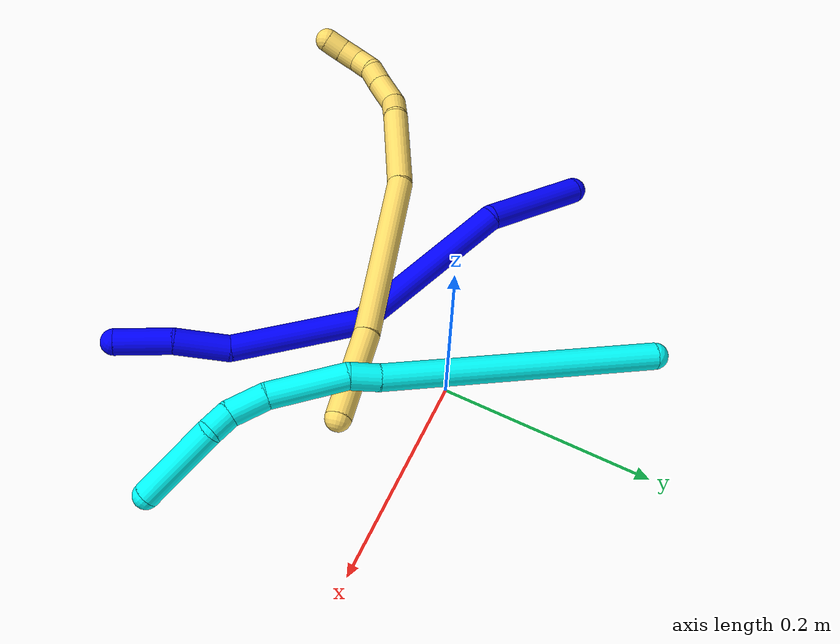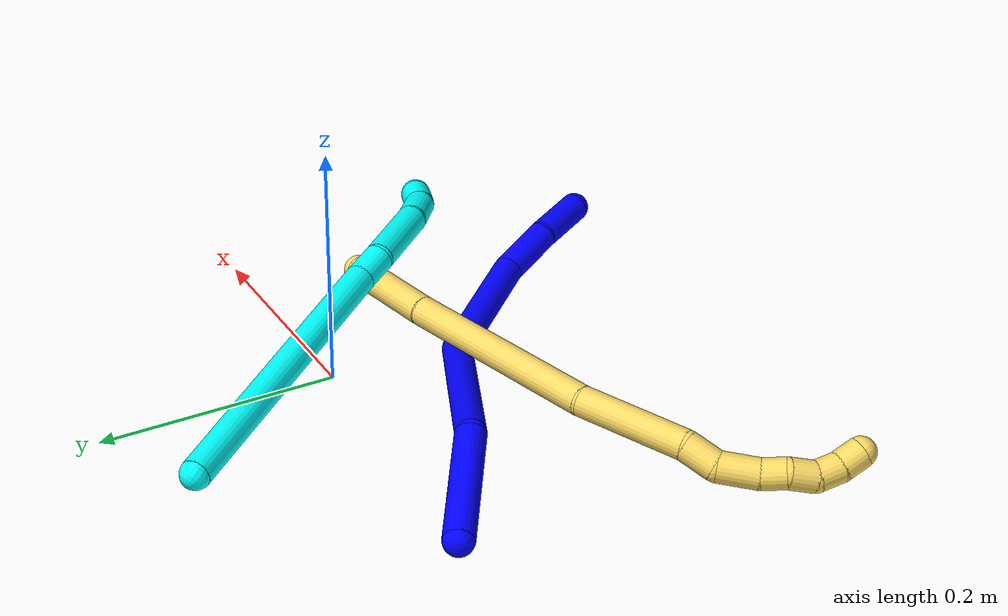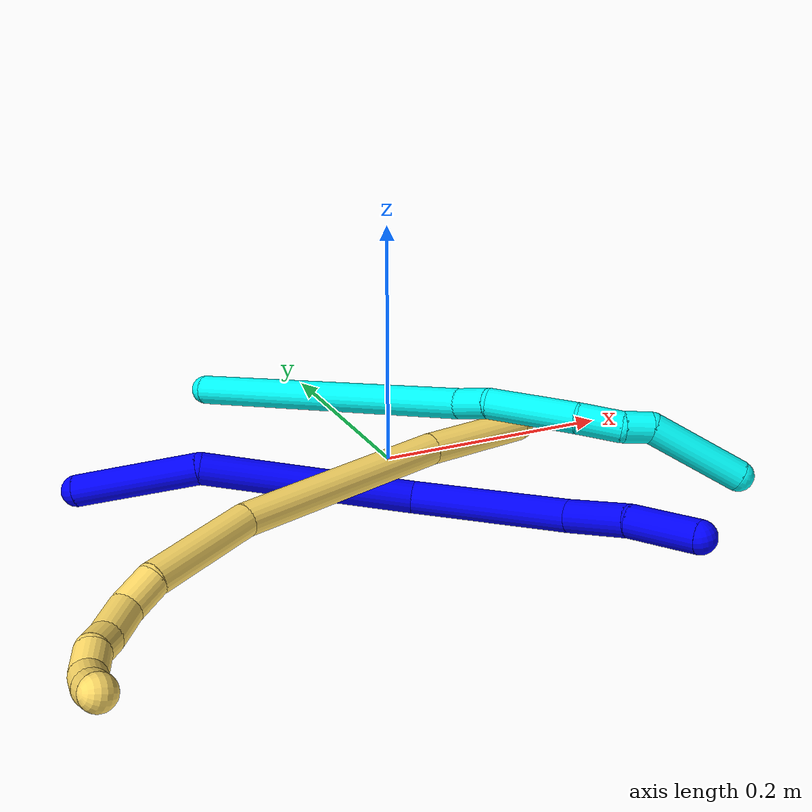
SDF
<sdf version="1.7">
 <world name="default">
  <model name="photoneo_s_sensor">
   <static>1</static>
   <pose>0 0 2 1.57079 1.57079 3.14159</pose>
   <link name="link">
    <inertial><mass>0.1</mass></inertial>
    <sensor name="sensor" type="depth">
     <update_rate>30</update_rate>
     <camera>
      <horizontal_fov>1.22</horizontal_fov>
      <image><width>1920</width><height>1200</height><format>B8G8R8</format></image>
      <clip><near>0.1</near><far>4</far></clip>
      <depth_camera><output>points</output></depth_camera>
     </camera>
     <plugin name="camera_plugin" filename="libgazebo_ros_depth_camera.so">
      <baseline>0.2</baseline>
      <alwaysOn>1</alwaysOn>
      <updateRate>0.0</updateRate>
      <cameraName>camera_ir</cameraName>
      <imageTopicName>/camera/color/image_raw</imageTopicName>
      <cameraInfoTopicName>/camera/color/camera_info</cameraInfoTopicName>
      <depthImageTopicName>/camera/depth/image_raw</depthImageTopicName>
      <depthImageCameraInfoTopicName>/camera/depth/camera_info</depthImageCameraInfoTopicName>
      <pointCloudTopicName>/camera/depth/points</pointCloudTopicName>
      <frameName>fr_optical</frameName>
      <pointCloudCutoff>0.1</pointCloudCutoff>
      <pointCloudCutoffMax>2.0</pointCloudCutoffMax>
      <distortionK1>0</distortionK1>
      <distortionK2>0</distortionK2>
      <distortionK3>0</distortionK3>
      <distortionT1>0</distortionT1>
      <distortionT2>0</distortionT2>
      <CxPrime>0</CxPrime>
      <Cx>0</Cx>
      <Cy>0</Cy>
      <focalLength>0</focalLength>
      <hackBaseline>0</hackBaseline>
     </plugin>
    </sensor>
   </link>
  </model>
  <model name="bin">
   <static>1</static>
   <link name="bottom">
    <collision name="collision-bottom">
     <pose>0 0 -0.01 0 -0 0</pose>
     <geometry><box><size>0.8 0.6 0.02</size></box></geometry>
     <surface>
      <friction><ode><mu>100</mu><mu2>100</mu2></ode></friction>
      <contact><collide_bitmask>65535</collide_bitmask></contact>
     </surface>
    </collision>
   </link>
   <link name="west_wall">
    <collision name="collision-west_wall">
     <pose>-0.41 0 0.1 0 -0 0</pose>
     <geometry><box><size>0.02 0.6 0.2</size></box></geometry>
     <surface>
      <friction><ode><mu>100</mu><mu2>100</mu2></ode></friction>
      <contact><collide_bitmask>65535</collide_bitmask></contact>
     </surface>
    </collision>
   </link>
   <link name="east_wall">
    <collision name="collision-east_wall">
     <pose>0.41 0 0.1 0 -0 0</pose>
     <geometry><box><size>0.02 0.6 0.2</size></box></geometry>
     <surface>
      <friction><ode><mu>100</mu><mu2>100</mu2></ode></friction>
      <contact><collide_bitmask>65535</collide_bitmask></contact>
     </surface>
    </collision>
   </link>
   <link name="south_wall">
    <collision name="collision-south_wall">
     <pose>0 -0.31 0.1 0 -0 0</pose>
     <geometry><box><size>0.8 0.02 0.2</size></box></geometry>
     <surface>
      <friction><ode><mu>100</mu><mu2>100</mu2></ode></friction>
      <contact><collide_bitmask>65535</collide_bitmask></contact>
     </surface>
    </collision>
   </link>
   <link name="north_wall">
    <collision name="collision-north_wall">
     <pose>0 0.31 0.1 0 -0 0</pose>
     <geometry><box><size>0.8 0.02 0.2</size></box></geometry>
     <surface>
      <friction><ode><mu>100</mu><mu2>100</mu2></ode></friction>
      <contact><collide_bitmask>65535</collide_bitmask></contact>
     </surface>
    </collision>
   </link>
  </model>
  <model name="1">
   <static>0</static>
   <link name="1">
    <collision name="collision-cylinder-e_1_1_4">
     <pose>0.050501 -0.010756 -0.001016 1.66498 1.36004 1.45305</pose>
     <geometry><cylinder><radius>0.0125</radius><length>0.103287</length></cylinder></geometry>
     <surface>
      <friction><ode><mu>1.16</mu><mu2>1.16</mu2><slip1>0</slip1><slip2>0</slip2></ode></friction>
      <contact><ode><kp>1e+06</kp><kd>1</kd><max_vel>0</max_vel><min_depth>0.001</min_depth></ode></contact>
     </surface>
    </collision>
    <visual name="visual-cylinder-e_1_1_4">
     <pose>0.050501 -0.010756 -0.001016 1.66498 1.36004 1.45305</pose>
     <geometry><cylinder><radius>0.0125</radius><length>0.103287</length></cylinder></geometry>
     <material><ambient>0 0 1 1</ambient></material>
    </visual>
    <collision name="collision-cylinder-e_2_4_5">
     <pose>0.171687 -0.051957 0.027183 0.806007 1.03264 0.474918</pose>
     <geometry><cylinder><radius>0.0125</radius><length>0.164644</length></cylinder></geometry>
     <surface>
      <friction><ode><mu>1.16</mu><mu2>1.16</mu2><slip1>0</slip1><slip2>0</slip2></ode></friction>
      <contact><ode><kp>1e+06</kp><kd>1</kd><max_vel>0</max_vel><min_depth>0.001</min_depth></ode></contact>
     </surface>
    </collision>
    <visual name="visual-cylinder-e_2_4_5">
     <pose>0.171687 -0.051957 0.027183 0.806007 1.03264 0.474918</pose>
     <geometry><cylinder><radius>0.0125</radius><length>0.164644</length></cylinder></geometry>
     <material><ambient>0 0 1 1</ambient></material>
    </visual>
    <collision name="collision-cylinder-e_3_5_6">
     <pose>0.303937 -0.079711 0.067575 -0.236194 1.38618 -0.196452</pose>
     <geometry><cylinder><radius>0.0125</radius><length>0.125257</length></cylinder></geometry>
     <surface>
      <friction><ode><mu>1.16</mu><mu2>1.16</mu2><slip1>0</slip1><slip2>0</slip2></ode></friction>
      <contact><ode><kp>1e+06</kp><kd>1</kd><max_vel>0</max_vel><min_depth>0.001</min_depth></ode></contact>
     </surface>
    </collision>
    <visual name="visual-cylinder-e_3_5_6">
     <pose>0.303937 -0.079711 0.067575 -0.236194 1.38618 -0.196452</pose>
     <geometry><cylinder><radius>0.0125</radius><length>0.125257</length></cylinder></geometry>
     <material><ambient>0 0 1 1</ambient></material>
    </visual>
    <collision name="collision-cylinder-e_4_6_7">
     <pose>0.390352 -0.06857 0.079003 -1.5412 1.24288 -1.215</pose>
     <geometry><cylinder><radius>0.0125</radius><length>0.052499</length></cylinder></geometry>
     <surface>
      <friction><ode><mu>1.16</mu><mu2>1.16</mu2><slip1>0</slip1><slip2>0</slip2></ode></friction>
      <contact><ode><kp>1e+06</kp><kd>1</kd><max_vel>0</max_vel><min_depth>0.001</min_depth></ode></contact>
     </surface>
    </collision>
    <visual name="visual-cylinder-e_4_6_7">
     <pose>0.390352 -0.06857 0.079003 -1.5412 1.24288 -1.215</pose>
     <geometry><cylinder><radius>0.0125</radius><length>0.052499</length></cylinder></geometry>
     <material><ambient>0 0 1 1</ambient></material>
    </visual>
    <collision name="collision-cylinder-e_5_7_2">
     <pose>0.440964 -0.053093 0.0842 -0.957353 1.24883 -0.715679</pose>
     <geometry><cylinder><radius>0.0125</radius><length>0.054314</length></cylinder></geometry>
     <surface>
      <friction><ode><mu>1.16</mu><mu2>1.16</mu2><slip1>0</slip1><slip2>0</slip2></ode></friction>
      <contact><ode><kp>1e+06</kp><kd>1</kd><max_vel>0</max_vel><min_depth>0.001</min_depth></ode></contact>
     </surface>
    </collision>
    <visual name="visual-cylinder-e_5_7_2">
     <pose>0.440964 -0.053093 0.0842 -0.957353 1.24883 -0.715679</pose>
     <geometry><cylinder><radius>0.0125</radius><length>0.054314</length></cylinder></geometry>
     <material><ambient>0 0 1 1</ambient></material>
    </visual>
    <collision name="collision-sphere-2">
     <pose>0.466726 -0.046067 0.089147 0 -0 0</pose>
     <geometry><sphere><radius>0.0125</radius></sphere></geometry>
     <surface>
      <friction><ode><mu>1.16</mu><mu2>1.16</mu2><slip1>0</slip1><slip2>0</slip2></ode></friction>
      <contact><ode><kp>1e+06</kp><kd>1</kd><max_vel>0</max_vel><min_depth>0.001</min_depth></ode></contact>
     </surface>
    </collision>
    <visual name="visual-sphere-2">
     <pose>0.466726 -0.046067 0.089147 0 -0 0</pose>
     <geometry><sphere><radius>0.0125</radius></sphere></geometry>
     <material><ambient>0 0 1 1</ambient></material>
    </visual>
    <collision name="collision-sphere-7">
     <pose>0.415203 -0.06012 0.079253 0 -0 0</pose>
     <geometry><sphere><radius>0.0125</radius></sphere></geometry>
     <surface>
      <friction><ode><mu>1.16</mu><mu2>1.16</mu2><slip1>0</slip1><slip2>0</slip2></ode></friction>
      <contact><ode><kp>1e+06</kp><kd>1</kd><max_vel>0</max_vel><min_depth>0.001</min_depth></ode></contact>
     </surface>
    </collision>
    <visual name="visual-sphere-7">
     <pose>0.415203 -0.06012 0.079253 0 -0 0</pose>
     <geometry><sphere><radius>0.0125</radius></sphere></geometry>
     <material><ambient>0 0 1 1</ambient></material>
    </visual>
    <collision name="collision-sphere-6">
     <pose>0.365501 -0.077021 0.078753 0 -0 0</pose>
     <geometry><sphere><radius>0.0125</radius></sphere></geometry>
     <surface>
      <friction><ode><mu>1.16</mu><mu2>1.16</mu2><slip1>0</slip1><slip2>0</slip2></ode></friction>
      <contact><ode><kp>1e+06</kp><kd>1</kd><max_vel>0</max_vel><min_depth>0.001</min_depth></ode></contact>
     </surface>
    </collision>
    <visual name="visual-sphere-6">
     <pose>0.365501 -0.077021 0.078753 0 -0 0</pose>
     <geometry><sphere><radius>0.0125</radius></sphere></geometry>
     <material><ambient>0 0 1 1</ambient></material>
    </visual>
    <collision name="collision-sphere-5">
     <pose>0.242373 -0.082401 0.056398 0 -0 0</pose>
     <geometry><sphere><radius>0.0125</radius></sphere></geometry>
     <surface>
      <friction><ode><mu>1.16</mu><mu2>1.16</mu2><slip1>0</slip1><slip2>0</slip2></ode></friction>
      <contact><ode><kp>1e+06</kp><kd>1</kd><max_vel>0</max_vel><min_depth>0.001</min_depth></ode></contact>
     </surface>
    </collision>
    <visual name="visual-sphere-5">
     <pose>0.242373 -0.082401 0.056398 0 -0 0</pose>
     <geometry><sphere><radius>0.0125</radius></sphere></geometry>
     <material><ambient>0 0 1 1</ambient></material>
    </visual>
    <collision name="collision-sphere-1">
     <geometry><sphere><radius>0.0125</radius></sphere></geometry>
     <surface>
      <friction><ode><mu>1.16</mu><mu2>1.16</mu2><slip1>0</slip1><slip2>0</slip2></ode></friction>
      <contact><ode><kp>1e+06</kp><kd>1</kd><max_vel>0</max_vel><min_depth>0.001</min_depth></ode></contact>
     </surface>
    </collision>
    <visual name="visual-sphere-1">
     <geometry><sphere><radius>0.0125</radius></sphere></geometry>
     <material><ambient>0 0 1 1</ambient></material>
    </visual>
    <collision name="collision-sphere-4">
     <pose>0.101001 -0.021512 -0.002032 0 -0 0</pose>
     <geometry><sphere><radius>0.0125</radius></sphere></geometry>
     <surface>
      <friction><ode><mu>1.16</mu><mu2>1.16</mu2><slip1>0</slip1><slip2>0</slip2></ode></friction>
      <contact><ode><kp>1e+06</kp><kd>1</kd><max_vel>0</max_vel><min_depth>0.001</min_depth></ode></contact>
     </surface>
    </collision>
    <visual name="visual-sphere-4">
     <pose>0.101001 -0.021512 -0.002032 0 -0 0</pose>
     <geometry><sphere><radius>0.0125</radius></sphere></geometry>
     <material><ambient>0 0 1 1</ambient></material>
    </visual>
    <inertial>
     <pose>0.231994 -0.052267 0.043111 0 -0 0</pose>
     <mass>0.5</mass>
     <inertia>
      <ixx>0.000342</ixx>
      <ixy>0</ixy>
      <ixz>0</ixz>
      <iyy>0.000719</iyy>
      <iyz>0</iyz>
      <izz>-0.000461</izz>
     </inertia>
    </inertial>
   </link>
   <pose>-0.256415 0.021542 0.0115 3.10887 -0.238994 -0.797762</pose>
  </model>
  <model name="3">
   <static>0</static>
   <link name="3">
    <collision name="collision-cylinder-e_1_1_4">
     <pose>0.007037 -0.076325 -0.104311 2.5099 0.05439 0.166097</pose>
     <geometry><cylinder><radius>0.0125</radius><length>0.258888</length></cylinder></geometry>
     <surface>
      <friction><ode><mu>1.16</mu><mu2>1.16</mu2><slip1>0</slip1><slip2>0</slip2></ode></friction>
      <contact><ode><kp>1e+06</kp><kd>1</kd><max_vel>0</max_vel><min_depth>0.001</min_depth></ode></contact>
     </surface>
    </collision>
    <visual name="visual-cylinder-e_1_1_4">
     <pose>0.007037 -0.076325 -0.104311 2.5099 0.05439 0.166097</pose>
     <geometry><cylinder><radius>0.0125</radius><length>0.258888</length></cylinder></geometry>
     <material><ambient>0.003922 1 0.996078 1</ambient></material>
    </visual>
    <collision name="collision-cylinder-e_2_4_5">
     <pose>0.015315 -0.159411 -0.220936 2.63941 0.088122 0.340443</pose>
     <geometry><cylinder><radius>0.0125</radius><length>0.028207</length></cylinder></geometry>
     <surface>
      <friction><ode><mu>1.16</mu><mu2>1.16</mu2><slip1>0</slip1><slip2>0</slip2></ode></friction>
      <contact><ode><kp>1e+06</kp><kd>1</kd><max_vel>0</max_vel><min_depth>0.001</min_depth></ode></contact>
     </surface>
    </collision>
    <visual name="visual-cylinder-e_2_4_5">
     <pose>0.015315 -0.159411 -0.220936 2.63941 0.088122 0.340443</pose>
     <geometry><cylinder><radius>0.0125</radius><length>0.028207</length></cylinder></geometry>
     <material><ambient>0.003922 1 0.996078 1</ambient></material>
    </visual>
    <collision name="collision-cylinder-e_3_5_6">
     <pose>0.018285 -0.192725 -0.258414 2.32936 0.047232 0.109746</pose>
     <geometry><cylinder><radius>0.0125</radius><length>0.073244</length></cylinder></geometry>
     <surface>
      <friction><ode><mu>1.16</mu><mu2>1.16</mu2><slip1>0</slip1><slip2>0</slip2></ode></friction>
      <contact><ode><kp>1e+06</kp><kd>1</kd><max_vel>0</max_vel><min_depth>0.001</min_depth></ode></contact>
     </surface>
    </collision>
    <visual name="visual-cylinder-e_3_5_6">
     <pose>0.018285 -0.192725 -0.258414 2.32936 0.047232 0.109746</pose>
     <geometry><cylinder><radius>0.0125</radius><length>0.073244</length></cylinder></geometry>
     <material><ambient>0.003922 1 0.996078 1</ambient></material>
    </visual>
    <collision name="collision-cylinder-e_4_6_7">
     <pose>0.019148 -0.234287 -0.293269 2.14412 -0.048479 -0.088965</pose>
     <geometry><cylinder><radius>0.0125</radius><length>0.035776</length></cylinder></geometry>
     <surface>
      <friction><ode><mu>1.16</mu><mu2>1.16</mu2><slip1>0</slip1><slip2>0</slip2></ode></friction>
      <contact><ode><kp>1e+06</kp><kd>1</kd><max_vel>0</max_vel><min_depth>0.001</min_depth></ode></contact>
     </surface>
    </collision>
    <visual name="visual-cylinder-e_4_6_7">
     <pose>0.019148 -0.234287 -0.293269 2.14412 -0.048479 -0.088965</pose>
     <geometry><cylinder><radius>0.0125</radius><length>0.035776</length></cylinder></geometry>
     <material><ambient>0.003922 1 0.996078 1</ambient></material>
    </visual>
    <collision name="collision-cylinder-e_5_7_8">
     <pose>0.01417 -0.25898 -0.307254 1.98812 -0.370148 -0.560452</pose>
     <geometry><cylinder><radius>0.0125</radius><length>0.022725</length></cylinder></geometry>
     <surface>
      <friction><ode><mu>1.16</mu><mu2>1.16</mu2><slip1>0</slip1><slip2>0</slip2></ode></friction>
      <contact><ode><kp>1e+06</kp><kd>1</kd><max_vel>0</max_vel><min_depth>0.001</min_depth></ode></contact>
     </surface>
    </collision>
    <visual name="visual-cylinder-e_5_7_8">
     <pose>0.01417 -0.25898 -0.307254 1.98812 -0.370148 -0.560452</pose>
     <geometry><cylinder><radius>0.0125</radius><length>0.022725</length></cylinder></geometry>
     <material><ambient>0.003922 1 0.996078 1</ambient></material>
    </visual>
    <collision name="collision-cylinder-e_6_8_2">
     <pose>0.01087 -0.308827 -0.317298 1.71303 0.019966 0.023028</pose>
     <geometry><cylinder><radius>0.0125</radius><length>0.081161</length></cylinder></geometry>
     <surface>
      <friction><ode><mu>1.16</mu><mu2>1.16</mu2><slip1>0</slip1><slip2>0</slip2></ode></friction>
      <contact><ode><kp>1e+06</kp><kd>1</kd><max_vel>0</max_vel><min_depth>0.001</min_depth></ode></contact>
     </surface>
    </collision>
    <visual name="visual-cylinder-e_6_8_2">
     <pose>0.01087 -0.308827 -0.317298 1.71303 0.019966 0.023028</pose>
     <geometry><cylinder><radius>0.0125</radius><length>0.081161</length></cylinder></geometry>
     <material><ambient>0.003922 1 0.996078 1</ambient></material>
    </visual>
    <collision name="collision-sphere-2">
     <pose>0.01168 -0.348989 -0.32305 0 -0 0</pose>
     <geometry><sphere><radius>0.0125</radius></sphere></geometry>
     <surface>
      <friction><ode><mu>1.16</mu><mu2>1.16</mu2><slip1>0</slip1><slip2>0</slip2></ode></friction>
      <contact><ode><kp>1e+06</kp><kd>1</kd><max_vel>0</max_vel><min_depth>0.001</min_depth></ode></contact>
     </surface>
    </collision>
    <visual name="visual-sphere-2">
     <pose>0.01168 -0.348989 -0.32305 0 -0 0</pose>
     <geometry><sphere><radius>0.0125</radius></sphere></geometry>
     <material><ambient>0.003922 1 0.996078 1</ambient></material>
    </visual>
    <collision name="collision-sphere-4">
     <pose>0.014074 -0.152649 -0.208622 0 -0 0</pose>
     <geometry><sphere><radius>0.0125</radius></sphere></geometry>
     <surface>
      <friction><ode><mu>1.16</mu><mu2>1.16</mu2><slip1>0</slip1><slip2>0</slip2></ode></friction>
      <contact><ode><kp>1e+06</kp><kd>1</kd><max_vel>0</max_vel><min_depth>0.001</min_depth></ode></contact>
     </surface>
    </collision>
    <visual name="visual-sphere-4">
     <pose>0.014074 -0.152649 -0.208622 0 -0 0</pose>
     <geometry><sphere><radius>0.0125</radius></sphere></geometry>
     <material><ambient>0.003922 1 0.996078 1</ambient></material>
    </visual>
    <collision name="collision-sphere-1">
     <geometry><sphere><radius>0.0125</radius></sphere></geometry>
     <surface>
      <friction><ode><mu>1.16</mu><mu2>1.16</mu2><slip1>0</slip1><slip2>0</slip2></ode></friction>
      <contact><ode><kp>1e+06</kp><kd>1</kd><max_vel>0</max_vel><min_depth>0.001</min_depth></ode></contact>
     </surface>
    </collision>
    <visual name="visual-sphere-1">
     <geometry><sphere><radius>0.0125</radius></sphere></geometry>
     <material><ambient>0.003922 1 0.996078 1</ambient></material>
    </visual>
    <collision name="collision-sphere-8">
     <pose>0.01006 -0.268664 -0.311547 0 -0 0</pose>
     <geometry><sphere><radius>0.0125</radius></sphere></geometry>
     <surface>
      <friction><ode><mu>1.16</mu><mu2>1.16</mu2><slip1>0</slip1><slip2>0</slip2></ode></friction>
      <contact><ode><kp>1e+06</kp><kd>1</kd><max_vel>0</max_vel><min_depth>0.001</min_depth></ode></contact>
     </surface>
    </collision>
    <visual name="visual-sphere-8">
     <pose>0.01006 -0.268664 -0.311547 0 -0 0</pose>
     <geometry><sphere><radius>0.0125</radius></sphere></geometry>
     <material><ambient>0.003922 1 0.996078 1</ambient></material>
    </visual>
    <collision name="collision-sphere-5">
     <pose>0.016556 -0.166174 -0.23325 0 -0 0</pose>
     <geometry><sphere><radius>0.0125</radius></sphere></geometry>
     <surface>
      <friction><ode><mu>1.16</mu><mu2>1.16</mu2><slip1>0</slip1><slip2>0</slip2></ode></friction>
      <contact><ode><kp>1e+06</kp><kd>1</kd><max_vel>0</max_vel><min_depth>0.001</min_depth></ode></contact>
     </surface>
    </collision>
    <visual name="visual-sphere-5">
     <pose>0.016556 -0.166174 -0.23325 0 -0 0</pose>
     <geometry><sphere><radius>0.0125</radius></sphere></geometry>
     <material><ambient>0.003922 1 0.996078 1</ambient></material>
    </visual>
    <collision name="collision-sphere-6">
     <pose>0.020014 -0.219277 -0.283577 0 -0 0</pose>
     <geometry><sphere><radius>0.0125</radius></sphere></geometry>
     <surface>
      <friction><ode><mu>1.16</mu><mu2>1.16</mu2><slip1>0</slip1><slip2>0</slip2></ode></friction>
      <contact><ode><kp>1e+06</kp><kd>1</kd><max_vel>0</max_vel><min_depth>0.001</min_depth></ode></contact>
     </surface>
    </collision>
    <visual name="visual-sphere-6">
     <pose>0.020014 -0.219277 -0.283577 0 -0 0</pose>
     <geometry><sphere><radius>0.0125</radius></sphere></geometry>
     <material><ambient>0.003922 1 0.996078 1</ambient></material>
    </visual>
    <collision name="collision-sphere-7">
     <pose>0.018281 -0.249297 -0.30296 0 -0 0</pose>
     <geometry><sphere><radius>0.0125</radius></sphere></geometry>
     <surface>
      <friction><ode><mu>1.16</mu><mu2>1.16</mu2><slip1>0</slip1><slip2>0</slip2></ode></friction>
      <contact><ode><kp>1e+06</kp><kd>1</kd><max_vel>0</max_vel><min_depth>0.001</min_depth></ode></contact>
     </surface>
    </collision>
    <visual name="visual-sphere-7">
     <pose>0.018281 -0.249297 -0.30296 0 -0 0</pose>
     <geometry><sphere><radius>0.0125</radius></sphere></geometry>
     <material><ambient>0.003922 1 0.996078 1</ambient></material>
    </visual>
    <inertial>
     <pose>0.010965 -0.155407 -0.190781 0 -0 0</pose>
     <mass>0.5</mass>
     <inertia>
      <ixx>0.001772</ixx>
      <ixy>0</ixy>
      <ixz>0</ixz>
      <iyy>-0.00097</iyy>
      <iyz>0</iyz>
      <izz>0.000833</izz>
     </inertia>
    </inertial>
   </link>
   <pose>-0.106297 0.161973 0.023493 2.39724 0.553262 -2.37239</pose>
  </model>
  <model name="5">
   <static>0</static>
   <link name="5">
    <collision name="collision-cylinder-e_1_1_4">
     <pose>-0.012864 -0.002808 0.04207 0.066647 -0.296121 -0.009944</pose>
     <geometry><cylinder><radius>0.0125</radius><length>0.088165</length></cylinder></geometry>
     <surface>
      <friction><ode><mu>1.16</mu><mu2>1.16</mu2><slip1>0</slip1><slip2>0</slip2></ode></friction>
      <contact><ode><kp>1e+06</kp><kd>1</kd><max_vel>0</max_vel><min_depth>0.001</min_depth></ode></contact>
     </surface>
    </collision>
    <visual name="visual-cylinder-e_1_1_4">
     <pose>-0.012864 -0.002808 0.04207 0.066647 -0.296121 -0.009944</pose>
     <geometry><cylinder><radius>0.0125</radius><length>0.088165</length></cylinder></geometry>
     <material><ambient>1 0.858824 0.4 1</ambient></material>
    </visual>
    <collision name="collision-cylinder-e_2_4_5">
     <pose>-0.052022 -0.020714 0.167407 0.179376 -0.301265 -0.027298</pose>
     <geometry><cylinder><radius>0.0125</radius><length>0.177231</length></cylinder></geometry>
     <surface>
      <friction><ode><mu>1.16</mu><mu2>1.16</mu2><slip1>0</slip1><slip2>0</slip2></ode></friction>
      <contact><ode><kp>1e+06</kp><kd>1</kd><max_vel>0</max_vel><min_depth>0.001</min_depth></ode></contact>
     </surface>
    </collision>
    <visual name="visual-cylinder-e_2_4_5">
     <pose>-0.052022 -0.020714 0.167407 0.179376 -0.301265 -0.027298</pose>
     <geometry><cylinder><radius>0.0125</radius><length>0.177231</length></cylinder></geometry>
     <material><ambient>1 0.858824 0.4 1</ambient></material>
    </visual>
    <collision name="collision-cylinder-e_3_5_6">
     <pose>-0.091092 -0.053522 0.290603 0.417445 -0.284526 -0.060656</pose>
     <geometry><cylinder><radius>0.0125</radius><length>0.091021</length></cylinder></geometry>
     <surface>
      <friction><ode><mu>1.16</mu><mu2>1.16</mu2><slip1>0</slip1><slip2>0</slip2></ode></friction>
      <contact><ode><kp>1e+06</kp><kd>1</kd><max_vel>0</max_vel><min_depth>0.001</min_depth></ode></contact>
     </surface>
    </collision>
    <visual name="visual-cylinder-e_3_5_6">
     <pose>-0.091092 -0.053522 0.290603 0.417445 -0.284526 -0.060656</pose>
     <geometry><cylinder><radius>0.0125</radius><length>0.091021</length></cylinder></geometry>
     <material><ambient>1 0.858824 0.4 1</ambient></material>
    </visual>
    <collision name="collision-cylinder-e_4_6_7">
     <pose>-0.11092 -0.077615 0.340711 0.560176 -0.530827 -0.156064</pose>
     <geometry><cylinder><radius>0.0125</radius><length>0.027863</length></cylinder></geometry>
     <surface>
      <friction><ode><mu>1.16</mu><mu2>1.16</mu2><slip1>0</slip1><slip2>0</slip2></ode></friction>
      <contact><ode><kp>1e+06</kp><kd>1</kd><max_vel>0</max_vel><min_depth>0.001</min_depth></ode></contact>
     </surface>
    </collision>
    <visual name="visual-cylinder-e_4_6_7">
     <pose>-0.11092 -0.077615 0.340711 0.560176 -0.530827 -0.156064</pose>
     <geometry><cylinder><radius>0.0125</radius><length>0.027863</length></cylinder></geometry>
     <material><ambient>1 0.858824 0.4 1</ambient></material>
    </visual>
    <collision name="collision-cylinder-e_5_7_8">
     <pose>-0.120329 -0.095881 0.362254 0.80767 -0.142372 -0.060923</pose>
     <geometry><cylinder><radius>0.0125</radius><length>0.033219</length></cylinder></geometry>
     <surface>
      <friction><ode><mu>1.16</mu><mu2>1.16</mu2><slip1>0</slip1><slip2>0</slip2></ode></friction>
      <contact><ode><kp>1e+06</kp><kd>1</kd><max_vel>0</max_vel><min_depth>0.001</min_depth></ode></contact>
     </surface>
    </collision>
    <visual name="visual-cylinder-e_5_7_8">
     <pose>-0.120329 -0.095881 0.362254 0.80767 -0.142372 -0.060923</pose>
     <geometry><cylinder><radius>0.0125</radius><length>0.033219</length></cylinder></geometry>
     <material><ambient>1 0.858824 0.4 1</ambient></material>
    </visual>
    <collision name="collision-cylinder-e_6_8_9">
     <pose>-0.121891 -0.114643 0.380942 0.754147 0.078939 0.031275</pose>
     <geometry><cylinder><radius>0.0125</radius><length>0.020161</length></cylinder></geometry>
     <surface>
      <friction><ode><mu>1.16</mu><mu2>1.16</mu2><slip1>0</slip1><slip2>0</slip2></ode></friction>
      <contact><ode><kp>1e+06</kp><kd>1</kd><max_vel>0</max_vel><min_depth>0.001</min_depth></ode></contact>
     </surface>
    </collision>
    <visual name="visual-cylinder-e_6_8_9">
     <pose>-0.121891 -0.114643 0.380942 0.754147 0.078939 0.031275</pose>
     <geometry><cylinder><radius>0.0125</radius><length>0.020161</length></cylinder></geometry>
     <material><ambient>1 0.858824 0.4 1</ambient></material>
    </visual>
    <collision name="collision-cylinder-e_7_9_10">
     <pose>-0.122722 -0.131114 0.393278 1.08928 -0.149137 -0.090446</pose>
     <geometry><cylinder><radius>0.0125</radius><length>0.021884</length></cylinder></geometry>
     <surface>
      <friction><ode><mu>1.16</mu><mu2>1.16</mu2><slip1>0</slip1><slip2>0</slip2></ode></friction>
      <contact><ode><kp>1e+06</kp><kd>1</kd><max_vel>0</max_vel><min_depth>0.001</min_depth></ode></contact>
     </surface>
    </collision>
    <visual name="visual-cylinder-e_7_9_10">
     <pose>-0.122722 -0.131114 0.393278 1.08928 -0.149137 -0.090446</pose>
     <geometry><cylinder><radius>0.0125</radius><length>0.021884</length></cylinder></geometry>
     <material><ambient>1 0.858824 0.4 1</ambient></material>
    </visual>
    <collision name="collision-cylinder-e_8_10_11">
     <pose>-0.121052 -0.149713 0.401764 1.20274 0.328908 0.226759</pose>
     <geometry><cylinder><radius>0.0125</radius><length>0.020406</length></cylinder></geometry>
     <surface>
      <friction><ode><mu>1.16</mu><mu2>1.16</mu2><slip1>0</slip1><slip2>0</slip2></ode></friction>
      <contact><ode><kp>1e+06</kp><kd>1</kd><max_vel>0</max_vel><min_depth>0.001</min_depth></ode></contact>
     </surface>
    </collision>
    <visual name="visual-cylinder-e_8_10_11">
     <pose>-0.121052 -0.149713 0.401764 1.20274 0.328908 0.226759</pose>
     <geometry><cylinder><radius>0.0125</radius><length>0.020406</length></cylinder></geometry>
     <material><ambient>1 0.858824 0.4 1</ambient></material>
    </visual>
    <collision name="collision-cylinder-e_9_11_2">
     <pose>-0.112524 -0.166773 0.408119 1.22715 0.549131 0.391662</pose>
     <geometry><cylinder><radius>0.0125</radius><length>0.02005</length></cylinder></geometry>
     <surface>
      <friction><ode><mu>1.16</mu><mu2>1.16</mu2><slip1>0</slip1><slip2>0</slip2></ode></friction>
      <contact><ode><kp>1e+06</kp><kd>1</kd><max_vel>0</max_vel><min_depth>0.001</min_depth></ode></contact>
     </surface>
    </collision>
    <visual name="visual-cylinder-e_9_11_2">
     <pose>-0.112524 -0.166773 0.408119 1.22715 0.549131 0.391662</pose>
     <geometry><cylinder><radius>0.0125</radius><length>0.02005</length></cylinder></geometry>
     <material><ambient>1 0.858824 0.4 1</ambient></material>
    </visual>
    <collision name="collision-sphere-2">
     <pose>-0.107291 -0.174824 0.411 0 -0 0</pose>
     <geometry><sphere><radius>0.0125</radius></sphere></geometry>
     <surface>
      <friction><ode><mu>1.16</mu><mu2>1.16</mu2><slip1>0</slip1><slip2>0</slip2></ode></friction>
      <contact><ode><kp>1e+06</kp><kd>1</kd><max_vel>0</max_vel><min_depth>0.001</min_depth></ode></contact>
     </surface>
    </collision>
    <visual name="visual-sphere-2">
     <pose>-0.107291 -0.174824 0.411 0 -0 0</pose>
     <geometry><sphere><radius>0.0125</radius></sphere></geometry>
     <material><ambient>1 0.858824 0.4 1</ambient></material>
    </visual>
    <collision name="collision-sphere-11">
     <pose>-0.117756 -0.158722 0.405238 0 -0 0</pose>
     <geometry><sphere><radius>0.0125</radius></sphere></geometry>
     <surface>
      <friction><ode><mu>1.16</mu><mu2>1.16</mu2><slip1>0</slip1><slip2>0</slip2></ode></friction>
      <contact><ode><kp>1e+06</kp><kd>1</kd><max_vel>0</max_vel><min_depth>0.001</min_depth></ode></contact>
     </surface>
    </collision>
    <visual name="visual-sphere-11">
     <pose>-0.117756 -0.158722 0.405238 0 -0 0</pose>
     <geometry><sphere><radius>0.0125</radius></sphere></geometry>
     <material><ambient>1 0.858824 0.4 1</ambient></material>
    </visual>
    <collision name="collision-sphere-10">
     <pose>-0.124348 -0.140704 0.398289 0 -0 0</pose>
     <geometry><sphere><radius>0.0125</radius></sphere></geometry>
     <surface>
      <friction><ode><mu>1.16</mu><mu2>1.16</mu2><slip1>0</slip1><slip2>0</slip2></ode></friction>
      <contact><ode><kp>1e+06</kp><kd>1</kd><max_vel>0</max_vel><min_depth>0.001</min_depth></ode></contact>
     </surface>
    </collision>
    <visual name="visual-sphere-10">
     <pose>-0.124348 -0.140704 0.398289 0 -0 0</pose>
     <geometry><sphere><radius>0.0125</radius></sphere></geometry>
     <material><ambient>1 0.858824 0.4 1</ambient></material>
    </visual>
    <collision name="collision-sphere-9">
     <pose>-0.121096 -0.121523 0.388267 0 -0 0</pose>
     <geometry><sphere><radius>0.0125</radius></sphere></geometry>
     <surface>
      <friction><ode><mu>1.16</mu><mu2>1.16</mu2><slip1>0</slip1><slip2>0</slip2></ode></friction>
      <contact><ode><kp>1e+06</kp><kd>1</kd><max_vel>0</max_vel><min_depth>0.001</min_depth></ode></contact>
     </surface>
    </collision>
    <visual name="visual-sphere-9">
     <pose>-0.121096 -0.121523 0.388267 0 -0 0</pose>
     <geometry><sphere><radius>0.0125</radius></sphere></geometry>
     <material><ambient>1 0.858824 0.4 1</ambient></material>
    </visual>
    <collision name="collision-sphere-4">
     <pose>-0.025728 -0.005616 0.08414 0 -0 0</pose>
     <geometry><sphere><radius>0.0125</radius></sphere></geometry>
     <surface>
      <friction><ode><mu>1.16</mu><mu2>1.16</mu2><slip1>0</slip1><slip2>0</slip2></ode></friction>
      <contact><ode><kp>1e+06</kp><kd>1</kd><max_vel>0</max_vel><min_depth>0.001</min_depth></ode></contact>
     </surface>
    </collision>
    <visual name="visual-sphere-4">
     <pose>-0.025728 -0.005616 0.08414 0 -0 0</pose>
     <geometry><sphere><radius>0.0125</radius></sphere></geometry>
     <material><ambient>1 0.858824 0.4 1</ambient></material>
    </visual>
    <collision name="collision-sphere-1">
     <geometry><sphere><radius>0.0125</radius></sphere></geometry>
     <surface>
      <friction><ode><mu>1.16</mu><mu2>1.16</mu2><slip1>0</slip1><slip2>0</slip2></ode></friction>
      <contact><ode><kp>1e+06</kp><kd>1</kd><max_vel>0</max_vel><min_depth>0.001</min_depth></ode></contact>
     </surface>
    </collision>
    <visual name="visual-sphere-1">
     <geometry><sphere><radius>0.0125</radius></sphere></geometry>
     <material><ambient>1 0.858824 0.4 1</ambient></material>
    </visual>
    <collision name="collision-sphere-8">
     <pose>-0.122686 -0.107763 0.373618 0 -0 0</pose>
     <geometry><sphere><radius>0.0125</radius></sphere></geometry>
     <surface>
      <friction><ode><mu>1.16</mu><mu2>1.16</mu2><slip1>0</slip1><slip2>0</slip2></ode></friction>
      <contact><ode><kp>1e+06</kp><kd>1</kd><max_vel>0</max_vel><min_depth>0.001</min_depth></ode></contact>
     </surface>
    </collision>
    <visual name="visual-sphere-8">
     <pose>-0.122686 -0.107763 0.373618 0 -0 0</pose>
     <geometry><sphere><radius>0.0125</radius></sphere></geometry>
     <material><ambient>1 0.858824 0.4 1</ambient></material>
    </visual>
    <collision name="collision-sphere-5">
     <pose>-0.078317 -0.035813 0.250673 0 -0 0</pose>
     <geometry><sphere><radius>0.0125</radius></sphere></geometry>
     <surface>
      <friction><ode><mu>1.16</mu><mu2>1.16</mu2><slip1>0</slip1><slip2>0</slip2></ode></friction>
      <contact><ode><kp>1e+06</kp><kd>1</kd><max_vel>0</max_vel><min_depth>0.001</min_depth></ode></contact>
     </surface>
    </collision>
    <visual name="visual-sphere-5">
     <pose>-0.078317 -0.035813 0.250673 0 -0 0</pose>
     <geometry><sphere><radius>0.0125</radius></sphere></geometry>
     <material><ambient>1 0.858824 0.4 1</ambient></material>
    </visual>
    <collision name="collision-sphere-6">
     <pose>-0.103867 -0.071231 0.330533 0 -0 0</pose>
     <geometry><sphere><radius>0.0125</radius></sphere></geometry>
     <surface>
      <friction><ode><mu>1.16</mu><mu2>1.16</mu2><slip1>0</slip1><slip2>0</slip2></ode></friction>
      <contact><ode><kp>1e+06</kp><kd>1</kd><max_vel>0</max_vel><min_depth>0.001</min_depth></ode></contact>
     </surface>
    </collision>
    <visual name="visual-sphere-6">
     <pose>-0.103867 -0.071231 0.330533 0 -0 0</pose>
     <geometry><sphere><radius>0.0125</radius></sphere></geometry>
     <material><ambient>1 0.858824 0.4 1</ambient></material>
    </visual>
    <collision name="collision-sphere-7">
     <pose>-0.117972 -0.083999 0.350889 0 -0 0</pose>
     <geometry><sphere><radius>0.0125</radius></sphere></geometry>
     <surface>
      <friction><ode><mu>1.16</mu><mu2>1.16</mu2><slip1>0</slip1><slip2>0</slip2></ode></friction>
      <contact><ode><kp>1e+06</kp><kd>1</kd><max_vel>0</max_vel><min_depth>0.001</min_depth></ode></contact>
     </surface>
    </collision>
    <visual name="visual-sphere-7">
     <pose>-0.117972 -0.083999 0.350889 0 -0 0</pose>
     <geometry><sphere><radius>0.0125</radius></sphere></geometry>
     <material><ambient>1 0.858824 0.4 1</ambient></material>
    </visual>
    <inertial>
     <pose>-0.071205 -0.051435 0.228049 0 -0 0</pose>
     <mass>0.5</mass>
     <inertia>
      <ixx>0.000558</ixx>
      <ixy>0</ixy>
      <ixz>0</ixz>
      <iyy>0.000564</iyy>
      <iyz>0</iyz>
      <izz>0.000328</izz>
     </inertia>
    </inertial>
   </link>
   <pose>0.085828 -0.066136 0.039775 0.669554 -1.17222 -0.51846</pose>
  </model>
 </world>
</sdf>
